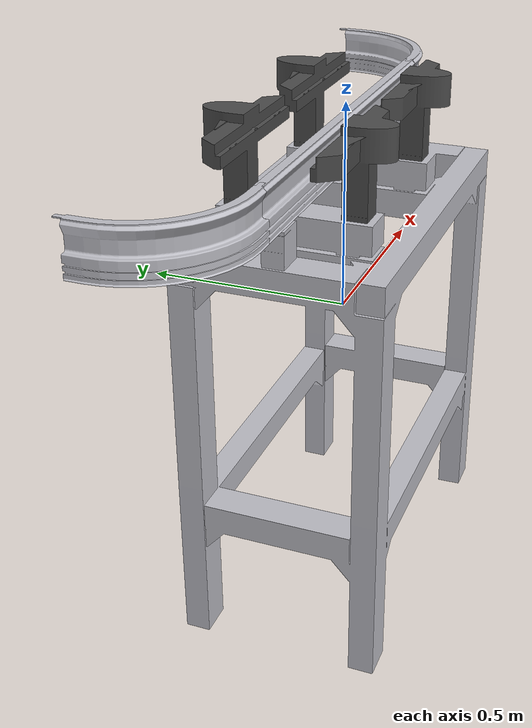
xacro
<?xml version="1.0" ?>
<robot name="env" xmlns:xacro="http://www.ros.org/wiki/xacro" >

  <link name="pieds_cellule_link">
    <visual>
      <origin rpy="0 0 0" xyz="0 0 0"/>
      <geometry>
        <mesh filename="package://mfja_motoman_hc10/meshes/env/pieds_cellule.stl" scale="1 1 1"/>
      </geometry>
      <material name="silver"/>
    </visual>
    <collision>
      <origin rpy="0 0 0" xyz="0 0 0"/>
      <geometry>
        <mesh filename="package://mfja_motoman_hc10/meshes/env/pieds_cellule.stl" scale="1 1 1"/>
      </geometry>
    </collision>
  </link>
  <link name="ergots1_link">
    <visual>
      <origin rpy="0 0 0" xyz="0 0 0"/>
      <geometry>
        <mesh filename="package://mfja_motoman_hc10/meshes/env/ergots.stl" scale="0.001 0.001 0.001"/>
      </geometry>
      <material name="dark_gray"/>
    </visual>
    <collision>
      <origin rpy="0 0 0" xyz="0 0 0"/>
      <geometry>
        <mesh filename="package://mfja_motoman_hc10/meshes/env/ergots.stl" scale="0.001 0.001 0.001"/>
      </geometry>
    </collision>
  </link>
  <link name="ergots2_link">
    <visual>
      <origin rpy="0 0 0" xyz="0 0 0"/>
      <geometry>
        <mesh filename="package://mfja_motoman_hc10/meshes/env/ergots.stl" scale="0.001 0.001 0.001"/>
      </geometry>
      <material name="dark_gray"/>
    </visual>
    <collision>
      <origin rpy="0 0 0" xyz="0 0 0"/>
      <geometry>
        <mesh filename="package://mfja_motoman_hc10/meshes/env/ergots.stl" scale="0.001 0.001 0.001"/>
      </geometry>
    </collision>
  </link>
  <link name="rail_milieu_link">
    <visual>
      <origin rpy="0 0 0" xyz="0 0 0"/>
      <geometry>
        <mesh filename="package://mfja_motoman_hc10/meshes/env/rail_milieu.stl" scale="0.001 0.001 0.001"/>
      </geometry>
      <material name="silver"/>
    </visual>
    <collision>
      <origin rpy="0 0 0" xyz="0 0 0"/>
      <geometry>
        <mesh filename="package://mfja_motoman_hc10/meshes/env/rail_milieu.stl" scale="0.001 0.001 0.001"/>
      </geometry>
    </collision>
  </link>
  <link name="rail_tournant1_link">
    <visual>
      <origin rpy="0 0 0" xyz="0 0 0"/>
      <geometry>
        <mesh filename="package://mfja_motoman_hc10/meshes/env/rail_tournant.stl" scale="0.001 0.001 0.001"/>
      </geometry>
      <material name="silver"/>
    </visual>
    <collision>
      <origin rpy="0 0 0" xyz="0 0 0"/>
      <geometry>
        <mesh filename="package://mfja_motoman_hc10/meshes/env/rail_tournant.stl" scale="0.001 0.001 0.001"/>
      </geometry>
    </collision>
  </link>
  <link name="rail_tournant2_link">
    <visual>
      <origin rpy="0 0 0" xyz="0 0 0"/>
      <geometry>
        <mesh filename="package://mfja_motoman_hc10/meshes/env/rail_tournant.stl" scale="0.001 0.001 0.001"/>
      </geometry>
      <material name="silver"/>
    </visual>
    <collision>
      <origin rpy="0 0 0" xyz="0 0 0"/>
      <geometry>
        <mesh filename="package://mfja_motoman_hc10/meshes/env/rail_tournant.stl" scale="0.001 0.001 0.001"/>
      </geometry>
    </collision>
  </link>

  <joint name="pieds_cellule_ergots1" type="fixed" >
    <origin rpy="0 0 0" xyz="0.111 0.025 0.485" />
    <parent link="pieds_cellule_link" />
    <child link="ergots1_link" />
  </joint>
  <joint name="pieds_cellule_ergots2" type="fixed" >
    <origin rpy="0 0 0" xyz="-0.29 0.025 0.485" />
    <parent link="pieds_cellule_link" />
    <child link="ergots2_link" />
  </joint>
  <joint name="pieds_cellule_rail_milieu" type="fixed" >
    <origin rpy="0 0 0" xyz="-0.02 0 0.403" />
    <parent link="pieds_cellule_link" />
    <child link="rail_milieu_link" />
  </joint>
  <joint name="rail_milieu_rail_tournant1" type="fixed" >
    <origin rpy="-1.57079 3.14 1.57079" xyz="0.69 0.09 0.003" />
    <parent link="rail_milieu_link" />
    <child link="rail_tournant1_link" />
  </joint>
  <joint name="rail_milieu_rail_tournant2" type="fixed" >
    <origin rpy="-1.57079 3.14 0" xyz="-0.651 0.09 0.003" />
    <parent link="rail_milieu_link" />
    <child link="rail_tournant2_link" />
  </joint>
</robot>
